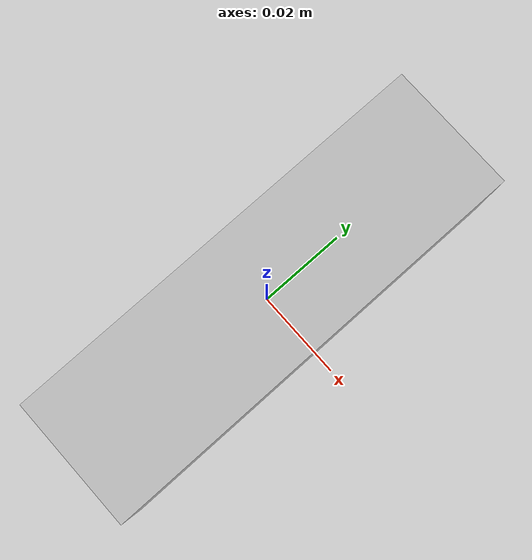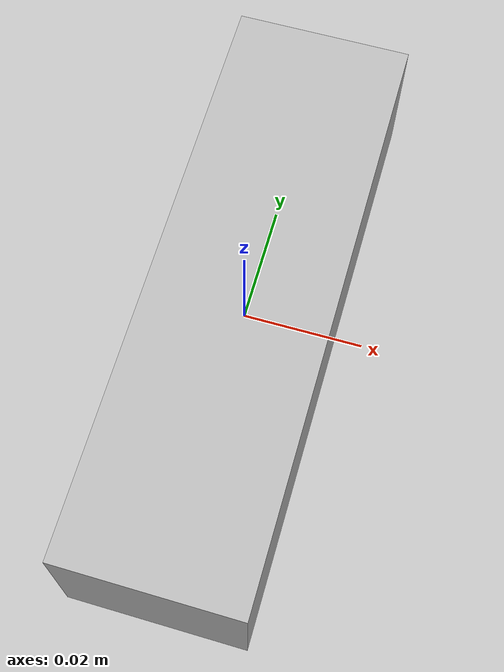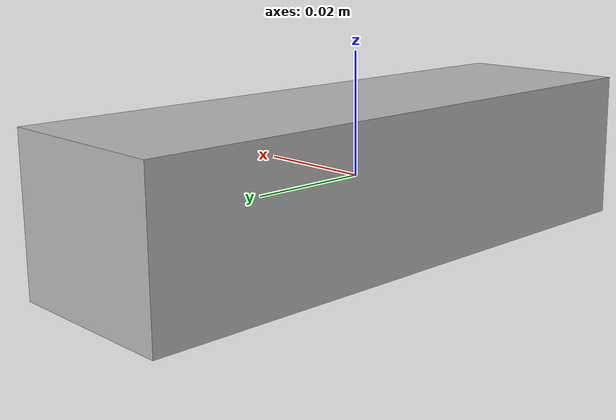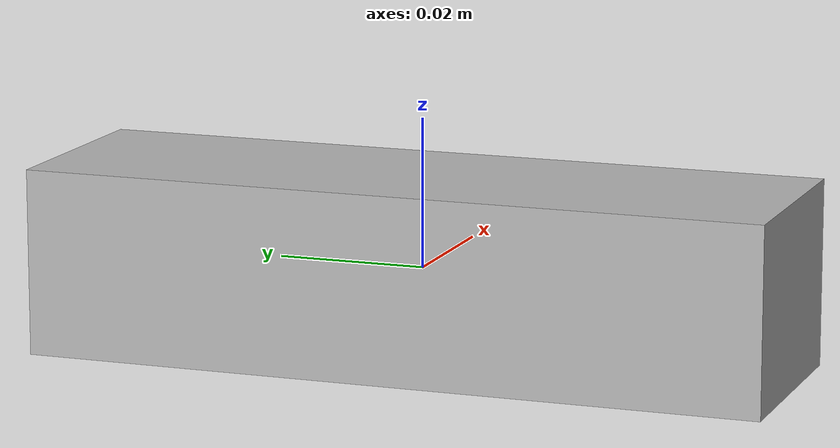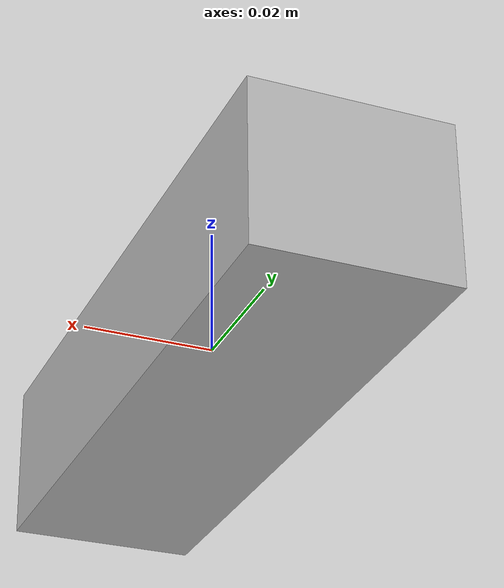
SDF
<?xml version="1.0"?>
<sdf version='1.9'>
<model name='segment_cam'>
  <static>0</static>
  <allow_auto_disable>1</allow_auto_disable>

  <link name='link'>
    <self_collide>0</self_collide>
    <enable_wind>0</enable_wind>
    <kinematic>0</kinematic>

    <inertial>
      <mass>0.072</mass>
      <inertia>
        <ixx>0.000007</ixx>
        <ixy>0</ixy>
        <ixz>0</ixz>
        <iyy>0.000007</iyy>
        <iyz>0</iyz>
        <izz>0.000007</izz>
      </inertia>
    </inertial>

    <collision name='collision_camera'>
      <geometry>
        <box>
          <size>0.030000 0.100000 0.025000</size>
        </box>
      </geometry>
      <max_contacts>1</max_contacts>
    </collision>

    <visual name='visual_camera'>
      <geometry>
        <box>
          <size>0.030000 0.100000 0.025000</size>
        </box>
      </geometry>
    </visual>

    <sensor name='camera' type='segmentation_camera'>
      <camera>
        <segmentation_type>semantic</segmentation_type>
        <save enabled="False">
          <path>/home/yg/Pictures/cam</path>
        </save>
        <horizontal_fov>2.1</horizontal_fov>
        <image>
          <width>320</width>
          <height>240</height>
          <format>L16</format>
        </image>
        <clip>
          <near>0.054</near>
          <far>50</far>
        </clip>
        <noise>
          <type>gaussian</type>
          <mean>0.0</mean>
          <stddev>0.00</stddev>
        </noise>
        <distortion>
          <k1>0.10369</k1>
          <k2>0.10328</k2>
        </distortion>
      </camera>

      <always_on>1</always_on>
      <update_rate>5</update_rate>
      <visualize>0</visualize>
      <plugin name='SegmentationCameraPlugin' filename='libSegmentationCameraPlugin.so'>
        <ros2>
          <topic_name>segmentation</topic_name>
          <frame_id>camera_link</frame_id>
        </ros2>
        <segmentation>
          <label>BOX</label>
          <label>CYLINDER</label>
          <label>ground</label>
        </segmentation>
      </plugin>
    </sensor>
  </link>
</model>
</sdf>
